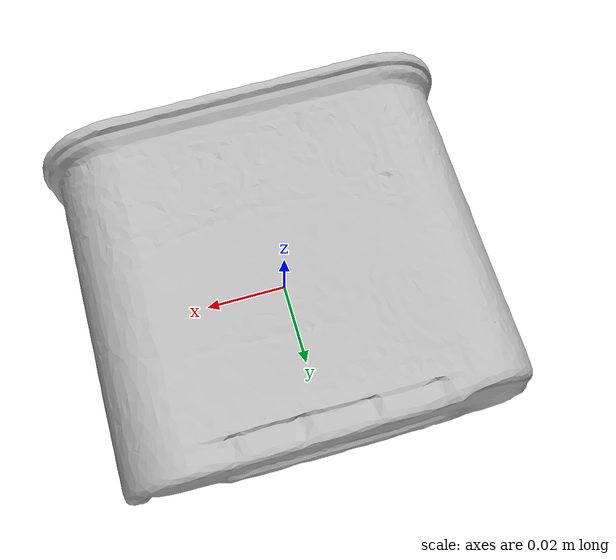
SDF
<?xml version="1.0"?>
<sdf version='1.6'>
<model name="010_potted_meat_can">
  <link name="base_link_meat">

    <inertial>
      <pose frame=''>0 0 0 0 0 0</pose>
      <mass>0.037000</mass>
        <inertia>
          <ixx>0.000032</ixx>
          <ixy>0</ixy>
          <ixz>0</ixz>
          <iyy>0.000042</iyy>
          <iyz>0</iyz>
          <izz>0.000053</izz>
        </inertia>
    </inertial>

    <visual name='base_link_meat'>
      <pose frame=''>0 0 0 0 0 0</pose>
      <geometry>
        <mesh>
          <uri>../meshes/010_potted_meat_can_textured.obj</uri>
        </mesh>
      </geometry>
    </visual>

    <collision name='potted_meat_can_collision'>
      <pose>0 0 0 0 0 0</pose>
      <geometry>
        <box>
          <size>0.095600 0.077500 0.051600</size>
        </box>
      </geometry>
      <material>
        <diffuse>0 1 0 1.0</diffuse>
      </material>
    </collision>

    <collision name='point_collision1'>
      <pose>0.048300 0.039250 0.026300 0 0 0 </pose>
      <geometry>
        <sphere><radius>1e-7</radius></sphere>
      </geometry>
    </collision>

    <collision name='point_collision2'>
      <pose>0.048300 -0.039250 0.026300 0 0 0 </pose>
      <geometry>
        <sphere><radius>1e-7</radius></sphere>
      </geometry>
    </collision>

    <collision name='point_collision3'>
      <pose>-0.048300 0.039250 0.026300 0 0 0 </pose>
      <geometry>
        <sphere><radius>1e-7</radius></sphere>
      </geometry>
    </collision>

    <collision name='point_collision4'>
      <pose>-0.048300 -0.039250 0.026300 0 0 0 </pose>
      <geometry>
        <sphere><radius>1e-7</radius></sphere>
      </geometry>
    </collision>

    <collision name='point_collision5'>
      <pose>0.048300 0.039250 -0.026300 0 0 0 </pose>
      <geometry>
        <sphere><radius>1e-7</radius></sphere>
      </geometry>
    </collision>

    <collision name='point_collision6'>
      <pose>0.048300 -0.039250 -0.026300 0 0 0 </pose>
      <geometry>
        <sphere><radius>1e-7</radius></sphere>
      </geometry>
    </collision>

    <collision name='point_collision7'>
      <pose>-0.048300 0.039250 -0.026300 0 0 0 </pose>
      <geometry>
        <sphere><radius>1e-7</radius></sphere>
      </geometry>
    </collision>

    <collision name='point_collision8'>
      <pose>-0.048300 -0.039250 -0.026300 0 0 0 </pose>
      <geometry>
        <sphere><radius>1e-7</radius></sphere>
      </geometry>
    </collision>

  </link>
</model>
</sdf>
